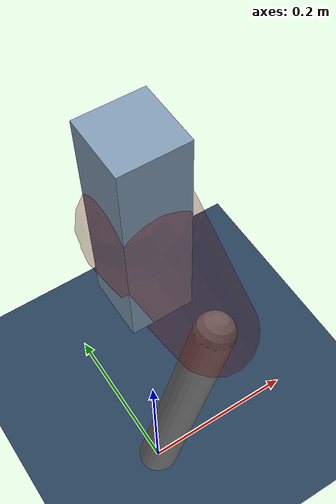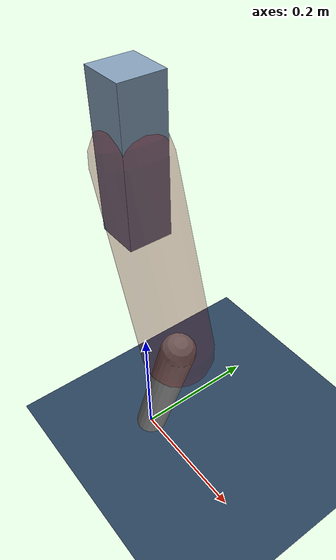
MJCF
<mujoco model="Hopper2D">
	<compiler inertiafromgeom="true" angle="radian" />
	<option timestep="0.001" integrator="implicit" cone="elliptic" solver="Newton" tolerance="1e-10" />

	<default>
		<geom contype="1" conaffinity="1" condim="3" friction="2 0.005 0.0001" solref="0.005 1" />
		<joint limited="true" damping="0.1" />
	</default>

	<asset>
		<texture name="skybox" type="skybox" builtin="gradient" rgb1=".4 .6 .8" rgb2="0 0 0" width="800" height="800" />
		<texture name="grid" type="2d" builtin="checker" rgb1=".1 .2 .3" rgb2=".2 .3 .4" width="300" height="300" mark="edge" markrgb=".2 .3 .4" />
		<material name="ground" texture="grid" texrepeat="1 1" texuniform="true" reflectance="0.1" />
		<material name="leg" rgba="0.5 0.6 0.7 1" />
	</asset>

	<worldbody>

		<geom name="floor" type="plane" size="5 5 0.25" material="ground" />

		<light directional="false" diffuse="0.8 0.8 0.8" specular="0.3 0.3 0.3" pos="0 0 2" dir="0 0 -1" />
		<light mode="targetbodycom" target="base" directional="false" diffuse="0.8 0.8 0.8" specular="0.3 0.3 0.3" pos="0 0 2" dir="0 0 -1" />

		<camera name="fixed" pos="0 -2 1" xyaxes="1 0 0 0 0 1" />
		<camera name="tracking" mode="trackcom" pos="0 -3 1" />

		<body name="root" pos="0 0 0.5033429478173898">
			<joint name="slide_x" type="slide" axis="1 0 0" range="-100 100" />
			<joint name="slide_z" type="slide" axis="0 0 1" range="0 10" />

			<body name="base" pos="0 0 0">
				<geom name="torso" type="box" size="0.03 0.03 0.1" mass="2.412" material="leg" />

				<body name="link1" pos="0 0 0" euler="0 1.254606770035826 0">
					<joint type="hinge" axis="0 -1 0" pos="0 0 0" name="hinge1" limited="true" range="-3.14 3.14" stiffness="0" damping="0.1" />
					<geom name="thigh" type="capsule" fromto="0 0 0 0.2640644647273192 0 0" size="0.05" rgba="0.5 0 0 0.3" mass="0.8930676082910299" />

					<body name="link2" pos="0.2640644647273192 0 0" euler="0 0.6307448025545603 0">
						<joint type="hinge" axis="0 -1 0" pos="0 0 0" name="hinge2" limited="true" range="-3.14 3.14" stiffness="0" damping="0.1" />
						<geom name="shank" type="capsule" fromto="0 0 0 0.26539053979492866 0 0" size="0.025" mass="0.45521243183594295" />

					</body>
				</body>
			</body>
		</body>
	</worldbody>

	<actuator>
		<motor name="torque1" joint="hinge1" ctrlrange="-101.55129258744752 101.55129258744752" ctrllimited="true" gear="1" />
		<motor name="torque2" joint="hinge2" ctrlrange="-103.52029626662409 103.52029626662409" ctrllimited="true" gear="1" />
	</actuator>
</mujoco>
